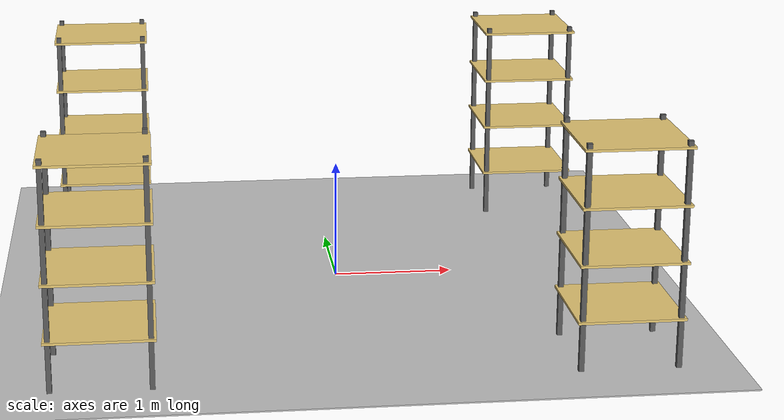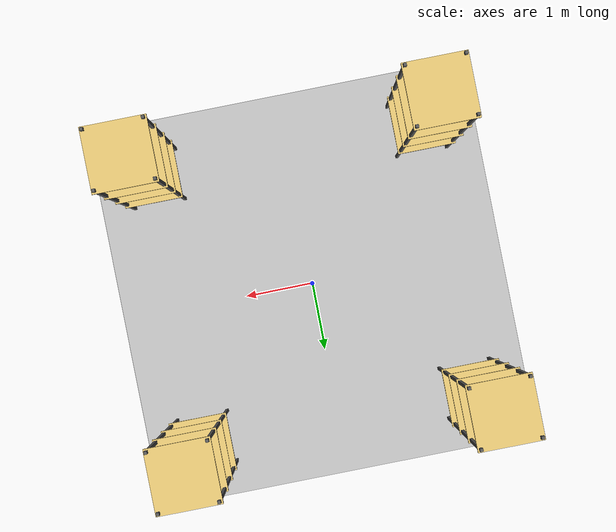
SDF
<?xml version="1.0" ?>
<sdf version="1.6">
  <world name="warehouse">

    <!-- ===== Ground plane ===== -->
    <model name="ground_plane">
      <static>1</static>
      <pose>0 0 0 0 0 0</pose>
      <link name="ground_link">
        <inertial>
          <mass>0</mass>
          <inertia>
            <ixx>1</ixx><ixy>0</ixy><ixz>0</ixz>
            <iyy>1</iyy><iyz>0</iyz><izz>1</izz>
          </inertia>
        </inertial>
        <visual name="ground_visual">
          <geometry>
            <box><size>20 20 0.01</size></box>
          </geometry>
          <material>
            <diffuse>0.75 0.75 0.75 1</diffuse>
          </material>
        </visual>
        <collision name="ground_collision">
          <geometry>
            <box><size>20 20 0.01</size></box>
          </geometry>
        </collision>
      </link>
    </model>

    <!-- ===== Shelf A1 (front-left) ===== -->
    <model name="shelf_A1">
      <static>1</static>
      <pose>-2 -2 0 0 0 0</pose>
      <link name="pod_link">
        <inertial>
          <mass>0</mass>
          <inertia>
            <ixx>0</ixx><ixy>0</ixy><ixz>0</ixz>
            <iyy>0</iyy><iyz>0</iyz><izz>0</izz>
          </inertia>
        </inertial>
        <!-- 4 legs -->
        <visual name="leg1"><pose> 0.38  0.38 0.9 0 0 0</pose><geometry><box><size>0.04 0.04 1.8</size></box></geometry><material><diffuse>0.35 0.35 0.35 1</diffuse></material></visual>
        <visual name="leg2"><pose>-0.38  0.38 0.9 0 0 0</pose><geometry><box><size>0.04 0.04 1.8</size></box></geometry><material><diffuse>0.35 0.35 0.35 1</diffuse></material></visual>
        <visual name="leg3"><pose> 0.38 -0.38 0.9 0 0 0</pose><geometry><box><size>0.04 0.04 1.8</size></box></geometry><material><diffuse>0.35 0.35 0.35 1</diffuse></material></visual>
        <visual name="leg4"><pose>-0.38 -0.38 0.9 0 0 0</pose><geometry><box><size>0.04 0.04 1.8</size></box></geometry><material><diffuse>0.35 0.35 0.35 1</diffuse></material></visual>
        <!-- 4 shelf boards -->
        <visual name="board1"><pose>0 0 0.40 0 0 0</pose><geometry><box><size>0.84 0.84 0.02</size></box></geometry><material><diffuse>0.90 0.78 0.45 1</diffuse></material></visual>
        <visual name="board2"><pose>0 0 0.85 0 0 0</pose><geometry><box><size>0.84 0.84 0.02</size></box></geometry><material><diffuse>0.90 0.78 0.45 1</diffuse></material></visual>
        <visual name="board3"><pose>0 0 1.30 0 0 0</pose><geometry><box><size>0.84 0.84 0.02</size></box></geometry><material><diffuse>0.90 0.78 0.45 1</diffuse></material></visual>
        <visual name="board4"><pose>0 0 1.75 0 0 0</pose><geometry><box><size>0.84 0.84 0.02</size></box></geometry><material><diffuse>0.90 0.78 0.45 1</diffuse></material></visual>
      </link>
    </model>

    <!-- ===== Shelf A2 (front-right) ===== -->
    <model name="shelf_A2">
      <static>1</static>
      <pose>2 -2 0 0 0 0</pose>
      <link name="pod_link">
        <inertial>
          <mass>0</mass>
          <inertia>
            <ixx>0</ixx><ixy>0</ixy><ixz>0</ixz>
            <iyy>0</iyy><iyz>0</iyz><izz>0</izz>
          </inertia>
        </inertial>
        <visual name="leg1"><pose> 0.38  0.38 0.9 0 0 0</pose><geometry><box><size>0.04 0.04 1.8</size></box></geometry><material><diffuse>0.35 0.35 0.35 1</diffuse></material></visual>
        <visual name="leg2"><pose>-0.38  0.38 0.9 0 0 0</pose><geometry><box><size>0.04 0.04 1.8</size></box></geometry><material><diffuse>0.35 0.35 0.35 1</diffuse></material></visual>
        <visual name="leg3"><pose> 0.38 -0.38 0.9 0 0 0</pose><geometry><box><size>0.04 0.04 1.8</size></box></geometry><material><diffuse>0.35 0.35 0.35 1</diffuse></material></visual>
        <visual name="leg4"><pose>-0.38 -0.38 0.9 0 0 0</pose><geometry><box><size>0.04 0.04 1.8</size></box></geometry><material><diffuse>0.35 0.35 0.35 1</diffuse></material></visual>
        <visual name="board1"><pose>0 0 0.40 0 0 0</pose><geometry><box><size>0.84 0.84 0.02</size></box></geometry><material><diffuse>0.90 0.78 0.45 1</diffuse></material></visual>
        <visual name="board2"><pose>0 0 0.85 0 0 0</pose><geometry><box><size>0.84 0.84 0.02</size></box></geometry><material><diffuse>0.90 0.78 0.45 1</diffuse></material></visual>
        <visual name="board3"><pose>0 0 1.30 0 0 0</pose><geometry><box><size>0.84 0.84 0.02</size></box></geometry><material><diffuse>0.90 0.78 0.45 1</diffuse></material></visual>
        <visual name="board4"><pose>0 0 1.75 0 0 0</pose><geometry><box><size>0.84 0.84 0.02</size></box></geometry><material><diffuse>0.90 0.78 0.45 1</diffuse></material></visual>
      </link>
    </model>

    <!-- ===== Shelf B1 (rear-left) ===== -->
    <model name="shelf_B1">
      <static>1</static>
      <pose>-2 2 0 0 0 0</pose>
      <link name="pod_link">
        <inertial>
          <mass>0</mass>
          <inertia>
            <ixx>0</ixx><ixy>0</ixy><ixz>0</ixz>
            <iyy>0</iyy><iyz>0</iyz><izz>0</izz>
          </inertia>
        </inertial>
        <visual name="leg1"><pose> 0.38  0.38 0.9 0 0 0</pose><geometry><box><size>0.04 0.04 1.8</size></box></geometry><material><diffuse>0.35 0.35 0.35 1</diffuse></material></visual>
        <visual name="leg2"><pose>-0.38  0.38 0.9 0 0 0</pose><geometry><box><size>0.04 0.04 1.8</size></box></geometry><material><diffuse>0.35 0.35 0.35 1</diffuse></material></visual>
        <visual name="leg3"><pose> 0.38 -0.38 0.9 0 0 0</pose><geometry><box><size>0.04 0.04 1.8</size></box></geometry><material><diffuse>0.35 0.35 0.35 1</diffuse></material></visual>
        <visual name="leg4"><pose>-0.38 -0.38 0.9 0 0 0</pose><geometry><box><size>0.04 0.04 1.8</size></box></geometry><material><diffuse>0.35 0.35 0.35 1</diffuse></material></visual>
        <visual name="board1"><pose>0 0 0.40 0 0 0</pose><geometry><box><size>0.84 0.84 0.02</size></box></geometry><material><diffuse>0.90 0.78 0.45 1</diffuse></material></visual>
        <visual name="board2"><pose>0 0 0.85 0 0 0</pose><geometry><box><size>0.84 0.84 0.02</size></box></geometry><material><diffuse>0.90 0.78 0.45 1</diffuse></material></visual>
        <visual name="board3"><pose>0 0 1.30 0 0 0</pose><geometry><box><size>0.84 0.84 0.02</size></box></geometry><material><diffuse>0.90 0.78 0.45 1</diffuse></material></visual>
        <visual name="board4"><pose>0 0 1.75 0 0 0</pose><geometry><box><size>0.84 0.84 0.02</size></box></geometry><material><diffuse>0.90 0.78 0.45 1</diffuse></material></visual>
      </link>
    </model>

    <!-- ===== Shelf B2 (rear-right) ===== -->
    <model name="shelf_B2">
      <static>1</static>
      <pose>2 2 0 0 0 0</pose>
      <link name="pod_link">
        <inertial>
          <mass>0</mass>
          <inertia>
            <ixx>0</ixx><ixy>0</ixy><ixz>0</ixz>
            <iyy>0</iyy><iyz>0</iyz><izz>0</izz>
          </inertia>
        </inertial>
        <visual name="leg1"><pose> 0.38  0.38 0.9 0 0 0</pose><geometry><box><size>0.04 0.04 1.8</size></box></geometry><material><diffuse>0.35 0.35 0.35 1</diffuse></material></visual>
        <visual name="leg2"><pose>-0.38  0.38 0.9 0 0 0</pose><geometry><box><size>0.04 0.04 1.8</size></box></geometry><material><diffuse>0.35 0.35 0.35 1</diffuse></material></visual>
        <visual name="leg3"><pose> 0.38 -0.38 0.9 0 0 0</pose><geometry><box><size>0.04 0.04 1.8</size></box></geometry><material><diffuse>0.35 0.35 0.35 1</diffuse></material></visual>
        <visual name="leg4"><pose>-0.38 -0.38 0.9 0 0 0</pose><geometry><box><size>0.04 0.04 1.8</size></box></geometry><material><diffuse>0.35 0.35 0.35 1</diffuse></material></visual>
        <visual name="board1"><pose>0 0 0.40 0 0 0</pose><geometry><box><size>0.84 0.84 0.02</size></box></geometry><material><diffuse>0.90 0.78 0.45 1</diffuse></material></visual>
        <visual name="board2"><pose>0 0 0.85 0 0 0</pose><geometry><box><size>0.84 0.84 0.02</size></box></geometry><material><diffuse>0.90 0.78 0.45 1</diffuse></material></visual>
        <visual name="board3"><pose>0 0 1.30 0 0 0</pose><geometry><box><size>0.84 0.84 0.02</size></box></geometry><material><diffuse>0.90 0.78 0.45 1</diffuse></material></visual>
        <visual name="board4"><pose>0 0 1.75 0 0 0</pose><geometry><box><size>0.84 0.84 0.02</size></box></geometry><material><diffuse>0.90 0.78 0.45 1</diffuse></material></visual>
      </link>
    </model>

  </world>
</sdf>
